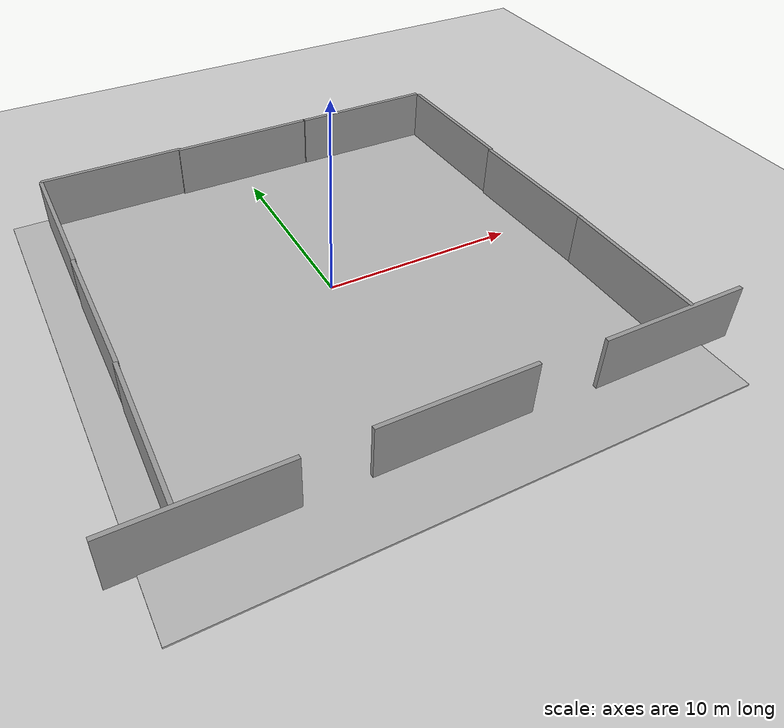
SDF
<sdf version="1.4">
 <world name="default">
  <light name="sun" type="directional">
   <pose>0 0 10 0 -0 0</pose>
   <diffuse>0.8 0.8 0.8 1</diffuse>
   <specular>0.2 0.2 0.2 1</specular>
   <attenuation>
    <range>1000</range>
    <constant>0.9</constant>
    <linear>0.01</linear>
    <quadratic>0.001</quadratic>
   </attenuation>
   <direction>-0.5 0.1 -0.9</direction>
  </light>
  <model name="ground_plane">
   <static>1</static>
   <link name="link">
    <collision name="collision">
     <geometry><plane><normal>0 0 1</normal><size>100 100</size></plane></geometry>
     <surface><friction><ode><mu>100</mu><mu2>50</mu2></ode></friction></surface>
    </collision>
    <visual name="visual">
     <cast_shadows>0</cast_shadows>
     <geometry><plane><normal>0 0 1</normal><size>100 100</size></plane></geometry>
     <material><script><uri>file://scripts/course.material</uri><name>Gazebo</name></script></material>
    </visual>
    <velocity_decay><linear>0</linear><angular>0</angular></velocity_decay>
   </link>
  </model>
  <physics type="ode">
   <max_step_size>0.001</max_step_size>
   <real_time_factor>1</real_time_factor>
   <real_time_update_rate>1000</real_time_update_rate>
   <gravity>0 0 -9.8</gravity>
  </physics>
  <scene><ambient>0.4 0.4 0.4 1</ambient><background>0.7 0.7 0.7 1</background><shadows>1</shadows></scene>
  <spherical_coordinates>
   <surface_model>EARTH_WGS84</surface_model>
   <latitude_deg>0</latitude_deg>
   <longitude_deg>0</longitude_deg>
   <elevation>0</elevation>
   <heading_deg>0</heading_deg>
  </spherical_coordinates>
  <model name="grey_wall">
   <static>1</static>
   <link name="link">
    <pose>0 0 1.4 0 -0 0</pose>
    <collision name="collision"><geometry><box><size>7.5 0.2 2.8</size></box></geometry></collision>
    <visual name="visual">
     <cast_shadows>0</cast_shadows>
     <geometry><box><size>7.5 0.2 2.8</size></box></geometry>
     <material>
      <script>
       <uri>model://grey_wall/materials/scripts</uri>
       <uri>model://grey_wall/materials/textures</uri>
       <name>vrc/grey_wall</name>
      </script>
     </material>
    </visual>
    <velocity_decay><linear>0</linear><angular>0</angular></velocity_decay>
   </link>
   <pose>-7.33876 11.4127 0 0 -0 0</pose>
  </model>
  <model name="grey_wall_0">
   <static>1</static>
   <link name="link">
    <pose>0 0 1.4 0 -0 0</pose>
    <collision name="collision"><geometry><box><size>7.5 0.2 2.8</size></box></geometry></collision>
    <visual name="visual">
     <cast_shadows>0</cast_shadows>
     <geometry><box><size>7.5 0.2 2.8</size></box></geometry>
     <material>
      <script>
       <uri>model://grey_wall/materials/scripts</uri>
       <uri>model://grey_wall/materials/textures</uri>
       <name>vrc/grey_wall</name>
      </script>
     </material>
    </visual>
    <velocity_decay><linear>0</linear><angular>0</angular></velocity_decay>
   </link>
   <pose>0.047559 11.3239 0 0 -0 0</pose>
  </model>
  <model name="grey_wall_1">
   <static>1</static>
   <link name="link">
    <pose>0 0 1.4 0 -0 0</pose>
    <collision name="collision"><geometry><box><size>7.5 0.2 2.8</size></box></geometry></collision>
    <visual name="visual">
     <cast_shadows>0</cast_shadows>
     <geometry><box><size>7.5 0.2 2.8</size></box></geometry>
     <material>
      <script>
       <uri>model://grey_wall/materials/scripts</uri>
       <uri>model://grey_wall/materials/textures</uri>
       <name>vrc/grey_wall</name>
      </script>
     </material>
    </visual>
    <velocity_decay><linear>0</linear><angular>0</angular></velocity_decay>
   </link>
   <pose>7.58159 11.3068 0 0 -0 0</pose>
  </model>
  <model name="grey_wall_2">
   <static>1</static>
   <link name="link">
    <pose>0 0 1.4 0 -0 0</pose>
    <collision name="collision"><geometry><box><size>7.5 0.2 2.8</size></box></geometry></collision>
    <visual name="visual">
     <cast_shadows>0</cast_shadows>
     <geometry><box><size>7.5 0.2 2.8</size></box></geometry>
     <material>
      <script>
       <uri>model://grey_wall/materials/scripts</uri>
       <uri>model://grey_wall/materials/textures</uri>
       <name>vrc/grey_wall</name>
      </script>
     </material>
    </visual>
    <velocity_decay><linear>0</linear><angular>0</angular></velocity_decay>
   </link>
   <pose>-11.104 7.63691 0 0 -0 1.5641</pose>
  </model>
  <model name="grey_wall_3">
   <static>1</static>
   <link name="link">
    <pose>0 0 1.4 0 -0 0</pose>
    <collision name="collision"><geometry><box><size>7.5 0.2 2.8</size></box></geometry></collision>
    <visual name="visual">
     <cast_shadows>0</cast_shadows>
     <geometry><box><size>7.5 0.2 2.8</size></box></geometry>
     <material>
      <script>
       <uri>model://grey_wall/materials/scripts</uri>
       <uri>model://grey_wall/materials/textures</uri>
       <name>vrc/grey_wall</name>
      </script>
     </material>
    </visual>
    <velocity_decay><linear>0</linear><angular>0</angular></velocity_decay>
   </link>
   <pose>-11.169 0.277338 0 0 -0 1.56973</pose>
  </model>
  <model name="grey_wall_4">
   <static>1</static>
   <link name="link">
    <pose>0 0 1.4 0 -0 0</pose>
    <collision name="collision"><geometry><box><size>7.5 0.2 2.8</size></box></geometry></collision>
    <visual name="visual">
     <cast_shadows>0</cast_shadows>
     <geometry><box><size>7.5 0.2 2.8</size></box></geometry>
     <material>
      <script>
       <uri>model://grey_wall/materials/scripts</uri>
       <uri>model://grey_wall/materials/textures</uri>
       <name>vrc/grey_wall</name>
      </script>
     </material>
    </visual>
    <velocity_decay><linear>0</linear><angular>0</angular></velocity_decay>
   </link>
   <pose>-11.283 -7.14484 0 0 -0 1.55123</pose>
  </model>
  <model name="grey_wall_5">
   <static>1</static>
   <link name="link">
    <pose>0 0 1.4 0 -0 0</pose>
    <collision name="collision"><geometry><box><size>7.5 0.2 2.8</size></box></geometry></collision>
    <visual name="visual">
     <cast_shadows>0</cast_shadows>
     <geometry><box><size>7.5 0.2 2.8</size></box></geometry>
     <material>
      <script>
       <uri>model://grey_wall/materials/scripts</uri>
       <uri>model://grey_wall/materials/textures</uri>
       <name>vrc/grey_wall</name>
      </script>
     </material>
    </visual>
    <velocity_decay><linear>0</linear><angular>0</angular></velocity_decay>
   </link>
   <pose>11.4842 7.42809 0 0 -0 1.59143</pose>
  </model>
  <model name="grey_wall_6">
   <static>1</static>
   <link name="link">
    <pose>0 0 1.4 0 -0 0</pose>
    <collision name="collision"><geometry><box><size>7.5 0.2 2.8</size></box></geometry></collision>
    <visual name="visual">
     <cast_shadows>0</cast_shadows>
     <geometry><box><size>7.5 0.2 2.8</size></box></geometry>
     <material>
      <script>
       <uri>model://grey_wall/materials/scripts</uri>
       <uri>model://grey_wall/materials/textures</uri>
       <name>vrc/grey_wall</name>
      </script>
     </material>
    </visual>
    <velocity_decay><linear>0</linear><angular>0</angular></velocity_decay>
   </link>
   <pose>11.5925 -0.032741 0 0 -0 1.60138</pose>
  </model>
  <model name="grey_wall_7">
   <static>1</static>
   <link name="link">
    <pose>0 0 1.4 0 -0 0</pose>
    <collision name="collision"><geometry><box><size>7.5 0.2 2.8</size></box></geometry></collision>
    <visual name="visual">
     <cast_shadows>0</cast_shadows>
     <geometry><box><size>7.5 0.2 2.8</size></box></geometry>
     <material>
      <script>
       <uri>model://grey_wall/materials/scripts</uri>
       <uri>model://grey_wall/materials/textures</uri>
       <name>vrc/grey_wall</name>
      </script>
     </material>
    </visual>
    <velocity_decay><linear>0</linear><angular>0</angular></velocity_decay>
   </link>
   <pose>11.6803 -7.34085 0 0 -0 1.56768</pose>
  </model>
  <model name="grey_wall_8">
   <static>1</static>
   <link name="link">
    <pose>0 0 1.4 0 -0 0</pose>
    <collision name="collision"><geometry><box><size>7.5 0.2 2.8</size></box></geometry></collision>
    <visual name="visual">
     <cast_shadows>0</cast_shadows>
     <geometry><box><size>7.5 0.2 2.8</size></box></geometry>
     <material>
      <script>
       <uri>model://grey_wall/materials/scripts</uri>
       <uri>model://grey_wall/materials/textures</uri>
       <name>vrc/grey_wall</name>
      </script>
     </material>
    </visual>
    <velocity_decay><linear>0</linear><angular>0</angular></velocity_decay>
   </link>
   <pose>10.7188 -11.1435 0 0 -0 0</pose>
  </model>
  <model name="grey_wall_9">
   <static>1</static>
   <link name="link">
    <pose>0 0 1.4 0 -0 0</pose>
    <collision name="collision"><geometry><box><size>7.5 0.2 2.8</size></box></geometry></collision>
    <visual name="visual">
     <cast_shadows>0</cast_shadows>
     <geometry><box><size>7.5 0.2 2.8</size></box></geometry>
     <material>
      <script>
       <uri>model://grey_wall/materials/scripts</uri>
       <uri>model://grey_wall/materials/textures</uri>
       <name>vrc/grey_wall</name>
      </script>
     </material>
    </visual>
    <velocity_decay><linear>0</linear><angular>0</angular></velocity_decay>
   </link>
   <pose>-10.4278 -10.9921 0 0 -0 0</pose>
  </model>
  <model name="grey_wall_10">
   <static>1</static>
   <link name="link">
    <pose>0 0 1.4 0 -0 0</pose>
    <collision name="collision"><geometry><box><size>7.5 0.2 2.8</size></box></geometry></collision>
    <visual name="visual">
     <cast_shadows>0</cast_shadows>
     <geometry><box><size>7.5 0.2 2.8</size></box></geometry>
     <material>
      <script>
       <uri>model://grey_wall/materials/scripts</uri>
       <uri>model://grey_wall/materials/textures</uri>
       <name>vrc/grey_wall</name>
      </script>
     </material>
    </visual>
    <velocity_decay><linear>0</linear><angular>0</angular></velocity_decay>
   </link>
   <pose>0 -11 0 0 -0 0</pose>
  </model>
  <model name="line_1">
   <pose>8.000000 7.5 0 0 -0 0.000000</pose>
   <link name="link">
    <inertial>
     <mass>1</mass>
     <inertia><ixx>1</ixx><ixy>0</ixy><ixz>0</ixz><iyy>1</iyy><iyz>0</iyz><izz>1</izz></inertia>
    </inertial>
    <collision name="collision">
     <geometry><box><size>4.000000 0.140000 0.020000</size></box></geometry>
    </collision>
    <visual name="visual">
     <geometry><box><size>4.000000 0.140000 0.020000</size></box></geometry>
     <material>
      <script><uri>file://media/materials/scripts/gazebo.material</uri><name>Gazebo/Yellow</name></script>
     </material>
    </visual>
    <velocity_decay><linear>0</linear><angular>0</angular></velocity_decay>
   </link>
   <static>1</static>
  </model>
  <model name="line_2">
   <pose>8 4.5 0 0 -0 0.000000</pose>
   <link name="link">
    <inertial>
     <mass>1</mass>
     <inertia><ixx>1</ixx><ixy>0</ixy><ixz>0</ixz><iyy>1</iyy><iyz>0</iyz><izz>1</izz></inertia>
    </inertial>
    <collision name="collision">
     <geometry><box><size>4.000000 0.140000 0.020000</size></box></geometry>
    </collision>
    <visual name="visual">
     <geometry><box><size>4.000000 0.140000 0.020000</size></box></geometry>
     <material>
      <script><uri>file://media/materials/scripts/gazebo.material</uri><name>Gazebo/Yellow</name></script>
     </material>
    </visual>
    <velocity_decay><linear>0</linear><angular>0</angular></velocity_decay>
   </link>
   <static>1</static>
  </model>
  <model name="line_3">
   <pose>8 1.5 0 0 -0 0.000000</pose>
   <link name="link">
    <inertial>
     <mass>1</mass>
     <inertia><ixx>1</ixx><ixy>0</ixy><ixz>0</ixz><iyy>1</iyy><iyz>0</iyz><izz>1</izz></inertia>
    </inertial>
    <collision name="collision">
     <geometry><box><size>4.000000 0.140000 0.020000</size></box></geometry>
    </collision>
    <visual name="visual">
     <geometry><box><size>4.000000 0.140000 0.020000</size></box></geometry>
     <material>
      <script><uri>file://media/materials/scripts/gazebo.material</uri><name>Gazebo/Yellow</name></script>
     </material>
    </visual>
    <velocity_decay><linear>0</linear><angular>0</angular></velocity_decay>
   </link>
   <static>1</static>
  </model>
  <model name="line_4">
   <pose>8 -1.5 0 0 -0 0.000000</pose>
   <link name="link">
    <inertial>
     <mass>1</mass>
     <inertia><ixx>1</ixx><ixy>0</ixy><ixz>0</ixz><iyy>1</iyy><iyz>0</iyz><izz>1</izz></inertia>
    </inertial>
    <collision name="collision">
     <geometry><box><size>4.000000 0.140000 0.020000</size></box></geometry>
    </collision>
    <visual name="visual">
     <geometry><box><size>4.000000 0.140000 0.020000</size></box></geometry>
     <material>
      <script><uri>file://media/materials/scripts/gazebo.material</uri><name>Gazebo/Yellow</name></script>
     </material>
    </visual>
    <velocity_decay><linear>0</linear><angular>0</angular></velocity_decay>
   </link>
   <static>1</static>
  </model>
  <model name="line_5">
   <pose>8 -4.5 0 0 -0 0.000000</pose>
   <link name="link">
    <inertial>
     <mass>1</mass>
     <inertia><ixx>1</ixx><ixy>0</ixy><ixz>0</ixz><iyy>1</iyy><iyz>0</iyz><izz>1</izz></inertia>
    </inertial>
    <collision name="collision">
     <geometry><box><size>4.000000 0.140000 0.020000</size></box></geometry>
    </collision>
    <visual name="visual">
     <geometry><box><size>4.000000 0.140000 0.020000</size></box></geometry>
     <material>
      <script><uri>file://media/materials/scripts/gazebo.material</uri><name>Gazebo/Yellow</name></script>
     </material>
    </visual>
    <velocity_decay><linear>0</linear><angular>0</angular></velocity_decay>
   </link>
   <static>1</static>
  </model>
  <model name="line_6">
   <pose>8 -7.5 0 0 -0 0.000000</pose>
   <link name="link">
    <inertial>
     <mass>1</mass>
     <inertia><ixx>1</ixx><ixy>0</ixy><ixz>0</ixz><iyy>1</iyy><iyz>0</iyz><izz>1</izz></inertia>
    </inertial>
    <collision name="collision">
     <geometry><box><size>4.000000 0.140000 0.020000</size></box></geometry>
    </collision>
    <visual name="visual">
     <geometry><box><size>4.000000 0.140000 0.020000</size></box></geometry>
     <material>
      <script><uri>file://media/materials/scripts/gazebo.material</uri><name>Gazebo/Yellow</name></script>
     </material>
    </visual>
    <velocity_decay><linear>0</linear><angular>0</angular></velocity_decay>
   </link>
   <static>1</static>
  </model>
  <model name="line_7">
   <pose>-8 7.5 0 0 -0 0.000000</pose>
   <link name="link">
    <inertial>
     <mass>1</mass>
     <inertia><ixx>1</ixx><ixy>0</ixy><ixz>0</ixz><iyy>1</iyy><iyz>0</iyz><izz>1</izz></inertia>
    </inertial>
    <collision name="collision">
     <geometry><box><size>4.000000 0.140000 0.020000</size></box></geometry>
    </collision>
    <visual name="visual">
     <geometry><box><size>4.000000 0.140000 0.020000</size></box></geometry>
     <material>
      <script><uri>file://media/materials/scripts/gazebo.material</uri><name>Gazebo/Yellow</name></script>
     </material>
    </visual>
    <velocity_decay><linear>0</linear><angular>0</angular></velocity_decay>
   </link>
   <static>1</static>
  </model>
  <model name="line_8">
   <pose>-8 4.5 0 0 -0 0.000000</pose>
   <link name="link">
    <inertial>
     <mass>1</mass>
     <inertia><ixx>1</ixx><ixy>0</ixy><ixz>0</ixz><iyy>1</iyy><iyz>0</iyz><izz>1</izz></inertia>
    </inertial>
    <collision name="collision">
     <geometry><box><size>4.000000 0.140000 0.020000</size></box></geometry>
    </collision>
    <visual name="visual">
     <geometry><box><size>4.000000 0.140000 0.020000</size></box></geometry>
     <material>
      <script><uri>file://media/materials/scripts/gazebo.material</uri><name>Gazebo/Yellow</name></script>
     </material>
    </visual>
    <velocity_decay><linear>0</linear><angular>0</angular></velocity_decay>
   </link>
   <static>1</static>
  </model>
  <model name="line_9">
   <pose>-8 1.5 0 0 -0 0.000000</pose>
   <link name="link">
    <inertial>
     <mass>1</mass>
     <inertia><ixx>1</ixx><ixy>0</ixy><ixz>0</ixz><iyy>1</iyy><iyz>0</iyz><izz>1</izz></inertia>
    </inertial>
    <collision name="collision">
     <geometry><box><size>4.000000 0.140000 0.020000</size></box></geometry>
    </collision>
    <visual name="visual">
     <geometry><box><size>4.000000 0.140000 0.020000</size></box></geometry>
     <material>
      <script><uri>file://media/materials/scripts/gazebo.material</uri><name>Gazebo/Yellow</name></script>
     </material>
    </visual>
    <velocity_decay><linear>0</linear><angular>0</angular></velocity_decay>
   </link>
   <static>1</static>
  </model>
  <model name="line_10">
   <pose>-8 -1.5 0 0 -0 0.000000</pose>
   <link name="link">
    <inertial>
     <mass>1</mass>
     <inertia><ixx>1</ixx><ixy>0</ixy><ixz>0</ixz><iyy>1</iyy><iyz>0</iyz><izz>1</izz></inertia>
    </inertial>
    <collision name="collision">
     <geometry><box><size>4.000000 0.140000 0.020000</size></box></geometry>
    </collision>
    <visual name="visual">
     <geometry><box><size>4.000000 0.140000 0.020000</size></box></geometry>
     <material>
      <script><uri>file://media/materials/scripts/gazebo.material</uri><name>Gazebo/Yellow</name></script>
     </material>
    </visual>
    <velocity_decay><linear>0</linear><angular>0</angular></velocity_decay>
   </link>
   <static>1</static>
  </model>
  <model name="line_11">
   <pose>-8 -4.5 0 0 -0 0.000000</pose>
   <link name="link">
    <inertial>
     <mass>1</mass>
     <inertia><ixx>1</ixx><ixy>0</ixy><ixz>0</ixz><iyy>1</iyy><iyz>0</iyz><izz>1</izz></inertia>
    </inertial>
    <collision name="collision">
     <geometry><box><size>4.000000 0.140000 0.020000</size></box></geometry>
    </collision>
    <visual name="visual">
     <geometry><box><size>4.000000 0.140000 0.020000</size></box></geometry>
     <material>
      <script><uri>file://media/materials/scripts/gazebo.material</uri><name>Gazebo/Yellow</name></script>
     </material>
    </visual>
    <velocity_decay><linear>0</linear><angular>0</angular></velocity_decay>
   </link>
   <static>1</static>
  </model>
  <model name="line_12">
   <pose>-8 -7.5 0 0 -0 0.000000</pose>
   <link name="link">
    <inertial>
     <mass>1</mass>
     <inertia><ixx>1</ixx><ixy>0</ixy><ixz>0</ixz><iyy>1</iyy><iyz>0</iyz><izz>1</izz></inertia>
    </inertial>
    <collision name="collision">
     <geometry><box><size>4.000000 0.140000 0.020000</size></box></geometry>
    </collision>
    <visual name="visual">
     <geometry><box><size>4.000000 0.140000 0.020000</size></box></geometry>
     <material>
      <script><uri>file://media/materials/scripts/gazebo.material</uri><name>Gazebo/Yellow</name></script>
     </material>
    </visual>
    <velocity_decay><linear>0</linear><angular>0</angular></velocity_decay>
   </link>
   <static>1</static>
  </model>
  <model name="line_13">
   <pose>5 6 0 0 -0 1.570796</pose>
   <link name="link">
    <inertial>
     <mass>1</mass>
     <inertia><ixx>1</ixx><ixy>0</ixy><ixz>0</ixz><iyy>1</iyy><iyz>0</iyz><izz>1</izz></inertia>
    </inertial>
    <collision name="collision">
     <geometry><box><size>8.000000 0.140000 0.020000</size></box></geometry>
    </collision>
    <visual name="visual">
     <geometry><box><size>8.000000 0.140000 0.020000</size></box></geometry>
     <material>
      <script><uri>file://media/materials/scripts/gazebo.material</uri><name>Gazebo/Yellow</name></script>
     </material>
    </visual>
    <velocity_decay><linear>0</linear><angular>0</angular></velocity_decay>
   </link>
   <static>1</static>
  </model>
  <model name="line_14">
   <pose>-5 6 0 0 -0 1.570796</pose>
   <link name="link">
    <inertial>
     <mass>1</mass>
     <inertia><ixx>1</ixx><ixy>0</ixy><ixz>0</ixz><iyy>1</iyy><iyz>0</iyz><izz>1</izz></inertia>
    </inertial>
    <collision name="collision">
     <geometry><box><size>8.000000 0.140000 0.020000</size></box></geometry>
    </collision>
    <visual name="visual">
     <geometry><box><size>8.000000 0.140000 0.020000</size></box></geometry>
     <material>
      <script><uri>file://media/materials/scripts/gazebo.material</uri><name>Gazebo/Yellow</name></script>
     </material>
    </visual>
    <velocity_decay><linear>0</linear><angular>0</angular></velocity_decay>
   </link>
   <static>1</static>
  </model>
  <model name="line_15">
   <pose>5 -1.5 0 0 -0 1.570796</pose>
   <link name="link">
    <inertial>
     <mass>1</mass>
     <inertia><ixx>1</ixx><ixy>0</ixy><ixz>0</ixz><iyy>1</iyy><iyz>0</iyz><izz>1</izz></inertia>
    </inertial>
    <collision name="collision">
     <geometry><box><size>8.000000 0.140000 0.020000</size></box></geometry>
    </collision>
    <visual name="visual">
     <geometry><box><size>8.000000 0.140000 0.020000</size></box></geometry>
     <material>
      <script><uri>file://media/materials/scripts/gazebo.material</uri><name>Gazebo/Yellow</name></script>
     </material>
    </visual>
    <velocity_decay><linear>0</linear><angular>0</angular></velocity_decay>
   </link>
   <static>1</static>
  </model>
  <model name="line_16">
   <pose>-5 -1.5 0 0 -0 1.570796</pose>
   <link name="link">
    <inertial>
     <mass>1</mass>
     <inertia><ixx>1</ixx><ixy>0</ixy><ixz>0</ixz><iyy>1</iyy><iyz>0</iyz><izz>1</izz></inertia>
    </inertial>
    <collision name="collision">
     <geometry><box><size>8.000000 0.140000 0.020000</size></box></geometry>
    </collision>
    <visual name="visual">
     <geometry><box><size>8.000000 0.140000 0.020000</size></box></geometry>
     <material>
      <script><uri>file://media/materials/scripts/gazebo.material</uri><name>Gazebo/Yellow</name></script>
     </material>
    </visual>
    <velocity_decay><linear>0</linear><angular>0</angular></velocity_decay>
   </link>
   <static>1</static>
  </model>
  <model name="line_17">
   <pose>5 -4 0 0 -0 1.570796</pose>
   <link name="link">
    <inertial>
     <mass>1</mass>
     <inertia><ixx>1</ixx><ixy>0</ixy><ixz>0</ixz><iyy>1</iyy><iyz>0</iyz><izz>1</izz></inertia>
    </inertial>
    <collision name="collision">
     <geometry><box><size>8.000000 0.140000 0.020000</size></box></geometry>
    </collision>
    <visual name="visual">
     <geometry><box><size>8.000000 0.140000 0.020000</size></box></geometry>
     <material>
      <script><uri>file://media/materials/scripts/gazebo.material</uri><name>Gazebo/Yellow</name></script>
     </material>
    </visual>
    <velocity_decay><linear>0</linear><angular>0</angular></velocity_decay>
   </link>
   <static>1</static>
  </model>
  <model name="line_18">
   <pose>-5 -4 0 0 -0 1.570796</pose>
   <link name="link">
    <inertial>
     <mass>1</mass>
     <inertia><ixx>1</ixx><ixy>0</ixy><ixz>0</ixz><iyy>1</iyy><iyz>0</iyz><izz>1</izz></inertia>
    </inertial>
    <collision name="collision">
     <geometry><box><size>8.000000 0.140000 0.020000</size></box></geometry>
    </collision>
    <visual name="visual">
     <geometry><box><size>8.000000 0.140000 0.020000</size></box></geometry>
     <material>
      <script><uri>file://media/materials/scripts/gazebo.material</uri><name>Gazebo/Yellow</name></script>
     </material>
    </visual>
    <velocity_decay><linear>0</linear><angular>0</angular></velocity_decay>
   </link>
   <static>1</static>
  </model>
  <model name="line_19">
   <pose>3 10 0 0 -0 0.000000</pose>
   <link name="link">
    <inertial>
     <mass>1</mass>
     <inertia><ixx>1</ixx><ixy>0</ixy><ixz>0</ixz><iyy>1</iyy><iyz>0</iyz><izz>1</izz></inertia>
    </inertial>
    <collision name="collision">
     <geometry><box><size>4.000000 0.140000 0.020000</size></box></geometry>
    </collision>
    <visual name="visual">
     <geometry><box><size>4.000000 0.140000 0.020000</size></box></geometry>
     <material>
      <script><uri>file://media/materials/scripts/gazebo.material</uri><name>Gazebo/Yellow</name></script>
     </material>
    </visual>
    <velocity_decay><linear>0</linear><angular>0</angular></velocity_decay>
   </link>
   <static>1</static>
  </model>
  <model name="line_20">
   <pose>-3 10 0 0 -0 0.000000</pose>
   <link name="link">
    <inertial>
     <mass>1</mass>
     <inertia><ixx>1</ixx><ixy>0</ixy><ixz>0</ixz><iyy>1</iyy><iyz>0</iyz><izz>1</izz></inertia>
    </inertial>
    <collision name="collision">
     <geometry><box><size>4.000000 0.140000 0.020000</size></box></geometry>
    </collision>
    <visual name="visual">
     <geometry><box><size>4.000000 0.140000 0.020000</size></box></geometry>
     <material>
      <script><uri>file://media/materials/scripts/gazebo.material</uri><name>Gazebo/Yellow</name></script>
     </material>
    </visual>
    <velocity_decay><linear>0</linear><angular>0</angular></velocity_decay>
   </link>
   <static>1</static>
  </model>
  <model name="line_21">
   <pose>5 -7 0 0 -0 1.570796</pose>
   <link name="link">
    <inertial>
     <mass>1</mass>
     <inertia><ixx>1</ixx><ixy>0</ixy><ixz>0</ixz><iyy>1</iyy><iyz>0</iyz><izz>1</izz></inertia>
    </inertial>
    <collision name="collision">
     <geometry><box><size>8.000000 0.140000 0.020000</size></box></geometry>
    </collision>
    <visual name="visual">
     <geometry><box><size>8.000000 0.140000 0.020000</size></box></geometry>
     <material>
      <script><uri>file://media/materials/scripts/gazebo.material</uri><name>Gazebo/Yellow</name></script>
     </material>
    </visual>
    <velocity_decay><linear>0</linear><angular>0</angular></velocity_decay>
   </link>
   <static>1</static>
  </model>
  <model name="line_22">
   <pose>-5 -7 0 0 -0 1.570796</pose>
   <link name="link">
    <inertial>
     <mass>1</mass>
     <inertia><ixx>1</ixx><ixy>0</ixy><ixz>0</ixz><iyy>1</iyy><iyz>0</iyz><izz>1</izz></inertia>
    </inertial>
    <collision name="collision">
     <geometry><box><size>8.000000 0.140000 0.020000</size></box></geometry>
    </collision>
    <visual name="visual">
     <geometry><box><size>8.000000 0.140000 0.020000</size></box></geometry>
     <material>
      <script><uri>file://media/materials/scripts/gazebo.material</uri><name>Gazebo/Yellow</name></script>
     </material>
    </visual>
    <velocity_decay><linear>0</linear><angular>0</angular></velocity_decay>
   </link>
   <static>1</static>
  </model>
  <model name="line_23">
   <pose>0 10 0 0 -0 0.000000</pose>
   <link name="link">
    <inertial>
     <mass>1</mass>
     <inertia><ixx>1</ixx><ixy>0</ixy><ixz>0</ixz><iyy>1</iyy><iyz>0</iyz><izz>1</izz></inertia>
    </inertial>
    <collision name="collision">
     <geometry><box><size>4.000000 0.140000 0.020000</size></box></geometry>
    </collision>
    <visual name="visual">
     <geometry><box><size>4.000000 0.140000 0.020000</size></box></geometry>
     <material>
      <script><uri>file://media/materials/scripts/gazebo.material</uri><name>Gazebo/Yellow</name></script>
     </material>
    </visual>
    <velocity_decay><linear>0</linear><angular>0</angular></velocity_decay>
   </link>
   <static>1</static>
  </model>
  <model name="line_24">
   <pose>-7 -9 0 0 -0 0.000000</pose>
   <link name="link">
    <inertial>
     <mass>1</mass>
     <inertia><ixx>1</ixx><ixy>0</ixy><ixz>0</ixz><iyy>1</iyy><iyz>0</iyz><izz>1</izz></inertia>
    </inertial>
    <collision name="collision">
     <geometry><box><size>4.000000 0.140000 0.020000</size></box></geometry>
    </collision>
    <visual name="visual">
     <geometry><box><size>4.000000 0.140000 0.020000</size></box></geometry>
     <material>
      <script><uri>file://media/materials/scripts/gazebo.material</uri><name>Gazebo/Red</name></script>
     </material>
    </visual>
    <velocity_decay><linear>0</linear><angular>0</angular></velocity_decay>
   </link>
   <static>1</static>
  </model>
  <model name="line_25">
   <pose>-7 -6 0 0 -0 0.000000</pose>
   <link name="link">
    <inertial>
     <mass>1</mass>
     <inertia><ixx>1</ixx><ixy>0</ixy><ixz>0</ixz><iyy>1</iyy><iyz>0</iyz><izz>1</izz></inertia>
    </inertial>
    <collision name="collision">
     <geometry><box><size>4.000000 0.140000 0.020000</size></box></geometry>
    </collision>
    <visual name="visual">
     <geometry><box><size>4.000000 0.140000 0.020000</size></box></geometry>
     <material>
      <script><uri>file://media/materials/scripts/gazebo.material</uri><name>Gazebo/Red</name></script>
     </material>
    </visual>
    <velocity_decay><linear>0</linear><angular>0</angular></velocity_decay>
   </link>
   <static>1</static>
  </model>
  <model name="line_26">
   <pose>-7 -3 0 0 -0 0.000000</pose>
   <link name="link">
    <inertial>
     <mass>1</mass>
     <inertia><ixx>1</ixx><ixy>0</ixy><ixz>0</ixz><iyy>1</iyy><iyz>0</iyz><izz>1</izz></inertia>
    </inertial>
    <collision name="collision">
     <geometry><box><size>4.000000 0.140000 0.020000</size></box></geometry>
    </collision>
    <visual name="visual">
     <geometry><box><size>4.000000 0.140000 0.020000</size></box></geometry>
     <material>
      <script><uri>file://media/materials/scripts/gazebo.material</uri><name>Gazebo/Red</name></script>
     </material>
    </visual>
    <velocity_decay><linear>0</linear><angular>0</angular></velocity_decay>
   </link>
   <static>1</static>
  </model>
  <model name="line_27">
   <pose>-7 0 0 0 -0 0.000000</pose>
   <link name="link">
    <inertial>
     <mass>1</mass>
     <inertia><ixx>1</ixx><ixy>0</ixy><ixz>0</ixz><iyy>1</iyy><iyz>0</iyz><izz>1</izz></inertia>
    </inertial>
    <collision name="collision">
     <geometry><box><size>4.000000 0.140000 0.020000</size></box></geometry>
    </collision>
    <visual name="visual">
     <geometry><box><size>4.000000 0.140000 0.020000</size></box></geometry>
     <material>
      <script><uri>file://media/materials/scripts/gazebo.material</uri><name>Gazebo/Red</name></script>
     </material>
    </visual>
    <velocity_decay><linear>0</linear><angular>0</angular></velocity_decay>
   </link>
   <static>1</static>
  </model>
  <model name="line_28">
   <pose>-7 3 0 0 -0 0.000000</pose>
   <link name="link">
    <inertial>
     <mass>1</mass>
     <inertia><ixx>1</ixx><ixy>0</ixy><ixz>0</ixz><iyy>1</iyy><iyz>0</iyz><izz>1</izz></inertia>
    </inertial>
    <collision name="collision">
     <geometry><box><size>4.000000 0.140000 0.020000</size></box></geometry>
    </collision>
    <visual name="visual">
     <geometry><box><size>4.000000 0.140000 0.020000</size></box></geometry>
     <material>
      <script><uri>file://media/materials/scripts/gazebo.material</uri><name>Gazebo/Red</name></script>
     </material>
    </visual>
    <velocity_decay><linear>0</linear><angular>0</angular></velocity_decay>
   </link>
   <static>1</static>
  </model>
  <model name="line_29">
   <pose>-7 6 0 0 -0 0.000000</pose>
   <link name="link">
    <inertial>
     <mass>1</mass>
     <inertia><ixx>1</ixx><ixy>0</ixy><ixz>0</ixz><iyy>1</iyy><iyz>0</iyz><izz>1</izz></inertia>
    </inertial>
    <collision name="collision">
     <geometry><box><size>4.000000 0.140000 0.020000</size></box></geometry>
    </collision>
    <visual name="visual">
     <geometry><box><size>4.000000 0.140000 0.020000</size></box></geometry>
     <material>
      <script><uri>file://media/materials/scripts/gazebo.material</uri><name>Gazebo/Red</name></script>
     </material>
    </visual>
    <velocity_decay><linear>0</linear><angular>0</angular></velocity_decay>
   </link>
   <static>1</static>
  </model>
  <model name="line_30">
   <pose>-7 9 0 0 -0 0.000000</pose>
   <link name="link">
    <inertial>
     <mass>1</mass>
     <inertia><ixx>1</ixx><ixy>0</ixy><ixz>0</ixz><iyy>1</iyy><iyz>0</iyz><izz>1</izz></inertia>
    </inertial>
    <collision name="collision">
     <geometry><box><size>4.000000 0.140000 0.020000</size></box></geometry>
    </collision>
    <visual name="visual">
     <geometry><box><size>4.000000 0.140000 0.020000</size></box></geometry>
     <material>
      <script><uri>file://media/materials/scripts/gazebo.material</uri><name>Gazebo/Red</name></script>
     </material>
    </visual>
    <velocity_decay><linear>0</linear><angular>0</angular></velocity_decay>
   </link>
   <static>1</static>
  </model>
  <model name="line_31">
   <pose>7 9 0 0 -0 0.000000</pose>
   <link name="link">
    <inertial>
     <mass>1</mass>
     <inertia><ixx>1</ixx><ixy>0</ixy><ixz>0</ixz><iyy>1</iyy><iyz>0</iyz><izz>1</izz></inertia>
    </inertial>
    <collision name="collision">
     <geometry><box><size>4.000000 0.140000 0.020000</size></box></geometry>
    </collision>
    <visual name="visual">
     <geometry><box><size>4.000000 0.140000 0.020000</size></box></geometry>
     <material>
      <script><uri>file://media/materials/scripts/gazebo.material</uri><name>Gazebo/Red</name></script>
     </material>
    </visual>
    <velocity_decay><linear>0</linear><angular>0</angular></velocity_decay>
   </link>
   <static>1</static>
  </model>
  <model name="line_32">
   <pose>7 6 0 0 -0 0.000000</pose>
   <link name="link">
    <inertial>
     <mass>1</mass>
     <inertia><ixx>1</ixx><ixy>0</ixy><ixz>0</ixz><iyy>1</iyy><iyz>0</iyz><izz>1</izz></inertia>
    </inertial>
    <collision name="collision">
     <geometry><box><size>4.000000 0.140000 0.020000</size></box></geometry>
    </collision>
    <visual name="visual">
     <geometry><box><size>4.000000 0.140000 0.020000</size></box></geometry>
     <material>
      <script><uri>file://media/materials/scripts/gazebo.material</uri><name>Gazebo/Red</name></script>
     </material>
    </visual>
    <velocity_decay><linear>0</linear><angular>0</angular></velocity_decay>
   </link>
   <static>1</static>
  </model>
  <model name="line_33">
   <pose>7 3 0 0 -0 0.000000</pose>
   <link name="link">
    <inertial>
     <mass>1</mass>
     <inertia><ixx>1</ixx><ixy>0</ixy><ixz>0</ixz><iyy>1</iyy><iyz>0</iyz><izz>1</izz></inertia>
    </inertial>
    <collision name="collision">
     <geometry><box><size>4.000000 0.140000 0.020000</size></box></geometry>
    </collision>
    <visual name="visual">
     <geometry><box><size>4.000000 0.140000 0.020000</size></box></geometry>
     <material>
      <script><uri>file://media/materials/scripts/gazebo.material</uri><name>Gazebo/Red</name></script>
     </material>
    </visual>
    <velocity_decay><linear>0</linear><angular>0</angular></velocity_decay>
   </link>
   <static>1</static>
  </model>
  <model name="line_34">
   <pose>7 0 0 0 -0 0.000000</pose>
   <link name="link">
    <inertial>
     <mass>1</mass>
     <inertia><ixx>1</ixx><ixy>0</ixy><ixz>0</ixz><iyy>1</iyy><iyz>0</iyz><izz>1</izz></inertia>
    </inertial>
    <collision name="collision">
     <geometry><box><size>4.000000 0.140000 0.020000</size></box></geometry>
    </collision>
    <visual name="visual">
     <geometry><box><size>4.000000 0.140000 0.020000</size></box></geometry>
     <material>
      <script><uri>file://media/materials/scripts/gazebo.material</uri><name>Gazebo/Red</name></script>
     </material>
    </visual>
    <velocity_decay><linear>0</linear><angular>0</angular></velocity_decay>
   </link>
   <static>1</static>
  </model>
  <model name="line_35">
   <pose>7 -3 0 0 -0 0.000000</pose>
   <link name="link">
    <inertial>
     <mass>1</mass>
     <inertia><ixx>1</ixx><ixy>0</ixy><ixz>0</ixz><iyy>1</iyy><iyz>0</iyz><izz>1</izz></inertia>
    </inertial>
    <collision name="collision">
     <geometry><box><size>4.000000 0.140000 0.020000</size></box></geometry>
    </collision>
    <visual name="visual">
     <geometry><box><size>4.000000 0.140000 0.020000</size></box></geometry>
     <material>
      <script><uri>file://media/materials/scripts/gazebo.material</uri><name>Gazebo/Red</name></script>
     </material>
    </visual>
    <velocity_decay><linear>0</linear><angular>0</angular></velocity_decay>
   </link>
   <static>1</static>
  </model>
  <model name="line_36">
   <pose>7 -6 0 0 -0 0.000000</pose>
   <link name="link">
    <inertial>
     <mass>1</mass>
     <inertia><ixx>1</ixx><ixy>0</ixy><ixz>0</ixz><iyy>1</iyy><iyz>0</iyz><izz>1</izz></inertia>
    </inertial>
    <collision name="collision">
     <geometry><box><size>4.000000 0.140000 0.020000</size></box></geometry>
    </collision>
    <visual name="visual">
     <geometry><box><size>4.000000 0.140000 0.020000</size></box></geometry>
     <material>
      <script><uri>file://media/materials/scripts/gazebo.material</uri><name>Gazebo/Red</name></script>
     </material>
    </visual>
    <velocity_decay><linear>0</linear><angular>0</angular></velocity_decay>
   </link>
   <static>1</static>
  </model>
  <model name="line_37">
   <pose>7 -9 0 0 -0 0.000000</pose>
   <link name="link">
    <inertial>
     <mass>1</mass>
     <inertia><ixx>1</ixx><ixy>0</ixy><ixz>0</ixz><iyy>1</iyy><iyz>0</iyz><izz>1</izz></inertia>
    </inertial>
    <collision name="collision">
     <geometry><box><size>4.000000 0.140000 0.020000</size></box></geometry>
    </collision>
    <visual name="visual">
     <geometry><box><size>4.000000 0.140000 0.020000</size></box></geometry>
     <material>
      <script><uri>file://media/materials/scripts/gazebo.material</uri><name>Gazebo/Red</name></script>
     </material>
    </visual>
    <velocity_decay><linear>0</linear><angular>0</angular></velocity_decay>
   </link>
   <static>1</static>
  </model>
  <scene>
   <ambient>0 0 0 1</ambient>
   <shadows>0</shadows>
   <grid>0</grid>
   <background>0.7 0.7 0.7 1</background>
  </scene>
  <physics type="ode">
   <gravity>0 0 -9.8</gravity>
   <ode>
    <solver><type>quick</type><iters>10</iters><sor>1.3</sor></solver>
    <constraints>
     <cfm>0</cfm>
     <erp>0.1</erp>
     <contact_max_correcting_vel>10</contact_max_correcting_vel>
     <contact_surface_layer>0.001</contact_surface_layer>
    </constraints>
   </ode>
   <real_time_update_rate>1000</real_time_update_rate>
   <max_step_size>0.001</max_step_size>
   <real_time_factor>1</real_time_factor>
  </physics>
  <include><uri>model://sun</uri></include>
  <model name="ground">
   <pose>0 -1 0 0 -0 1.57</pose>
   <static>1</static>
   <link name="ground">
    <collision name="ground_coll"><geometry><box><size>26 24 .1</size></box></geometry></collision>
    <visual name="ground_vis">
     <geometry><box><size>26 26 .1</size></box></geometry>
     <material><script><uri>file://scripts/course.material</uri><name>course</name></script></material>
    </visual>
   </link>
  </model>
 </world>
</sdf>
